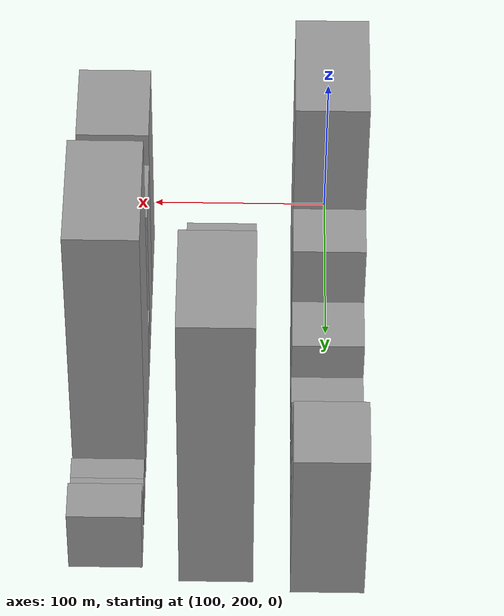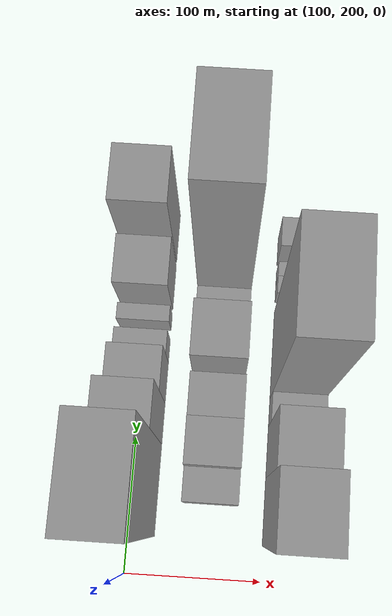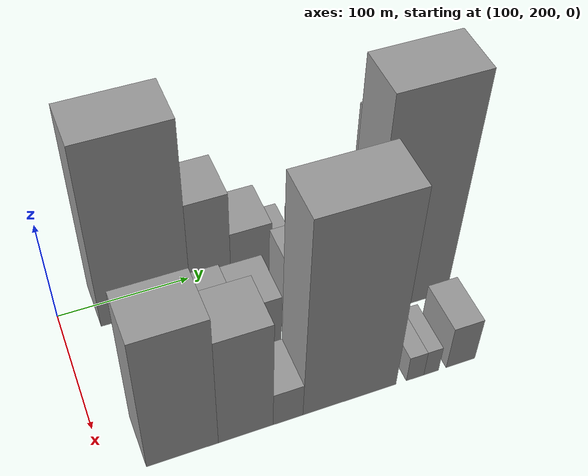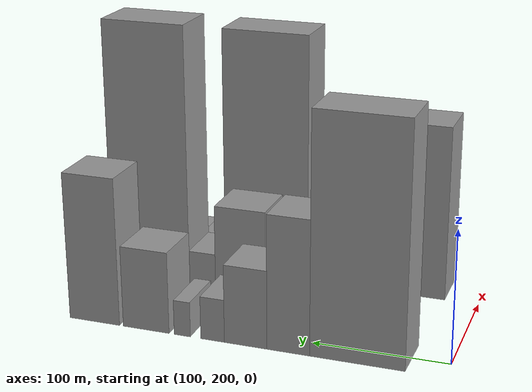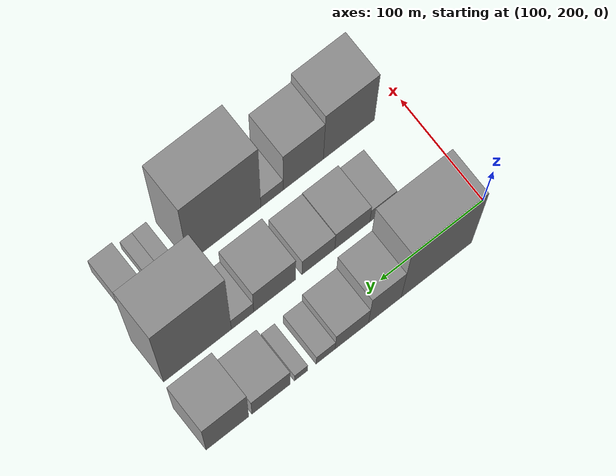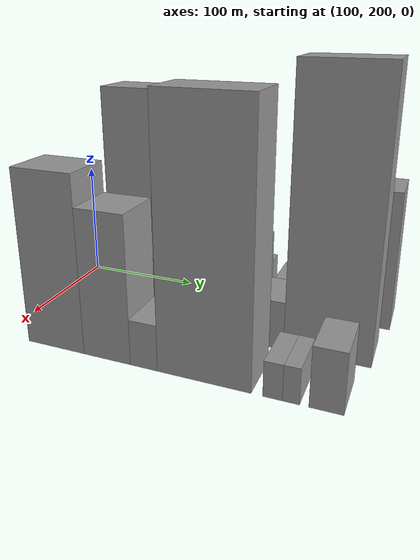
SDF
<sdf version="1.6">
 <world name="default">
  <model name="building_32">
   <static>1</static>
   <pose>100.0000 261.7838 0 0.000000 0.000000 0.000000</pose>
   <link name="link">
    <pose>0 0 90.00 0 0 0</pose>
    <collision name="collision"><geometry><box><size>40.0000 68.2540 180.0000</size></box></geometry></collision>
    <visual name="visual">
     <cast_shadows>0</cast_shadows>
     <geometry><box><size>40.0000 68.2540 180.0000</size></box></geometry>
     <material>
      <script>
       <uri>model://grey_wall/materials/scripts</uri>
       <uri>model://grey_wall/materials/textures</uri>
       <name>vrc/grey_wall</name>
      </script>
     </material>
    </visual>
   </link>
  </model>
  <model name="building_33">
   <static>1</static>
   <pose>100.0000 311.6807 0 0.000000 0.000000 0.000000</pose>
   <link name="link">
    <pose>0 0 51.00 0 0 0</pose>
    <collision name="collision"><geometry><box><size>40.0000 31.5397 102.0000</size></box></geometry></collision>
    <visual name="visual">
     <cast_shadows>0</cast_shadows>
     <geometry><box><size>40.0000 31.5397 102.0000</size></box></geometry>
     <material>
      <script>
       <uri>model://grey_wall/materials/scripts</uri>
       <uri>model://grey_wall/materials/textures</uri>
       <name>vrc/grey_wall</name>
      </script>
     </material>
    </visual>
   </link>
  </model>
  <model name="building_34">
   <static>1</static>
   <pose>100.0000 343.4627 0 0.000000 0.000000 0.000000</pose>
   <link name="link">
    <pose>0 0 30.00 0 0 0</pose>
    <collision name="collision"><geometry><box><size>40.0000 32.0243 60.0000</size></box></geometry></collision>
    <visual name="visual">
     <cast_shadows>0</cast_shadows>
     <geometry><box><size>40.0000 32.0243 60.0000</size></box></geometry>
     <material>
      <script>
       <uri>model://grey_wall/materials/scripts</uri>
       <uri>model://grey_wall/materials/textures</uri>
       <name>vrc/grey_wall</name>
      </script>
     </material>
    </visual>
   </link>
  </model>
  <model name="building_35">
   <static>1</static>
   <pose>100.0000 368.5396 0 0.000000 0.000000 0.000000</pose>
   <link name="link">
    <pose>0 0 16.50 0 0 0</pose>
    <collision name="collision"><geometry><box><size>40.0000 18.1296 33.0000</size></box></geometry></collision>
    <visual name="visual">
     <cast_shadows>0</cast_shadows>
     <geometry><box><size>40.0000 18.1296 33.0000</size></box></geometry>
     <material>
      <script>
       <uri>model://grey_wall/materials/scripts</uri>
       <uri>model://grey_wall/materials/textures</uri>
       <name>vrc/grey_wall</name>
      </script>
     </material>
    </visual>
   </link>
  </model>
  <model name="building_36">
   <static>1</static>
   <pose>100.0000 391.9266 0 0.000000 0.000000 0.000000</pose>
   <link name="link">
    <pose>0 0 13.50 0 0 0</pose>
    <collision name="collision"><geometry><box><size>40.0000 12.6444 27.0000</size></box></geometry></collision>
    <visual name="visual">
     <cast_shadows>0</cast_shadows>
     <geometry><box><size>40.0000 12.6444 27.0000</size></box></geometry>
     <material>
      <script>
       <uri>model://grey_wall/materials/scripts</uri>
       <uri>model://grey_wall/materials/textures</uri>
       <name>vrc/grey_wall</name>
      </script>
     </material>
    </visual>
   </link>
  </model>
  <model name="building_37">
   <static>1</static>
   <pose>100.0000 420.4541 0 0.000000 0.000000 0.000000</pose>
   <link name="link">
    <pose>0 0 31.50 0 0 0</pose>
    <collision name="collision"><geometry><box><size>40.0000 36.4104 63.0000</size></box></geometry></collision>
    <visual name="visual">
     <cast_shadows>0</cast_shadows>
     <geometry><box><size>40.0000 36.4104 63.0000</size></box></geometry>
     <material>
      <script>
       <uri>model://grey_wall/materials/scripts</uri>
       <uri>model://grey_wall/materials/textures</uri>
       <name>vrc/grey_wall</name>
      </script>
     </material>
    </visual>
   </link>
  </model>
  <model name="building_38">
   <static>1</static>
   <pose>100.0000 461.8608 0 0.000000 0.000000 0.000000</pose>
   <link name="link">
    <pose>0 0 57.00 0 0 0</pose>
    <collision name="collision"><geometry><box><size>40.0000 40.4030 114.0000</size></box></geometry></collision>
    <visual name="visual">
     <cast_shadows>0</cast_shadows>
     <geometry><box><size>40.0000 40.4030 114.0000</size></box></geometry>
     <material>
      <script>
       <uri>model://grey_wall/materials/scripts</uri>
       <uri>model://grey_wall/materials/textures</uri>
       <name>vrc/grey_wall</name>
      </script>
     </material>
    </visual>
   </link>
  </model>
  <model name="building_79">
   <static>1</static>
   <pose>160.0000 265.9566 0 0.000000 0.000000 0.000000</pose>
   <link name="link">
    <pose>0 0 21.00 0 0 0</pose>
    <collision name="collision"><geometry><box><size>40.0000 24.7344 42.0000</size></box></geometry></collision>
    <visual name="visual">
     <cast_shadows>0</cast_shadows>
     <geometry><box><size>40.0000 24.7344 42.0000</size></box></geometry>
     <material>
      <script>
       <uri>model://grey_wall/materials/scripts</uri>
       <uri>model://grey_wall/materials/textures</uri>
       <name>vrc/grey_wall</name>
      </script>
     </material>
    </visual>
   </link>
  </model>
  <model name="building_80">
   <static>1</static>
   <pose>160.0000 295.2602 0 0.000000 0.000000 0.000000</pose>
   <link name="link">
    <pose>0 0 28.50 0 0 0</pose>
    <collision name="collision"><geometry><box><size>40.0000 33.8728 57.0000</size></box></geometry></collision>
    <visual name="visual">
     <cast_shadows>0</cast_shadows>
     <geometry><box><size>40.0000 33.8728 57.0000</size></box></geometry>
     <material>
      <script>
       <uri>model://grey_wall/materials/scripts</uri>
       <uri>model://grey_wall/materials/textures</uri>
       <name>vrc/grey_wall</name>
      </script>
     </material>
    </visual>
   </link>
  </model>
  <model name="building_81">
   <static>1</static>
   <pose>160.0000 327.9938 0 0.000000 0.000000 0.000000</pose>
   <link name="link">
    <pose>0 0 27.00 0 0 0</pose>
    <collision name="collision"><geometry><box><size>40.0000 31.5945 54.0000</size></box></geometry></collision>
    <visual name="visual">
     <cast_shadows>0</cast_shadows>
     <geometry><box><size>40.0000 31.5945 54.0000</size></box></geometry>
     <material>
      <script>
       <uri>model://grey_wall/materials/scripts</uri>
       <uri>model://grey_wall/materials/textures</uri>
       <name>vrc/grey_wall</name>
      </script>
     </material>
    </visual>
   </link>
  </model>
  <model name="building_82">
   <static>1</static>
   <pose>160.0000 369.8762 0 0.000000 0.000000 0.000000</pose>
   <link name="link">
    <pose>0 0 39.00 0 0 0</pose>
    <collision name="collision"><geometry><box><size>40.0000 40.1702 78.0000</size></box></geometry></collision>
    <visual name="visual">
     <cast_shadows>0</cast_shadows>
     <geometry><box><size>40.0000 40.1702 78.0000</size></box></geometry>
     <material>
      <script>
       <uri>model://grey_wall/materials/scripts</uri>
       <uri>model://grey_wall/materials/textures</uri>
       <name>vrc/grey_wall</name>
      </script>
     </material>
    </visual>
   </link>
  </model>
  <model name="building_83">
   <static>1</static>
   <pose>160.0000 400.6297 0 0.000000 0.000000 0.000000</pose>
   <link name="link">
    <pose>0 0 19.50 0 0 0</pose>
    <collision name="collision"><geometry><box><size>40.0000 21.3368 39.0000</size></box></geometry></collision>
    <visual name="visual">
     <cast_shadows>0</cast_shadows>
     <geometry><box><size>40.0000 21.3368 39.0000</size></box></geometry>
     <material>
      <script>
       <uri>model://grey_wall/materials/scripts</uri>
       <uri>model://grey_wall/materials/textures</uri>
       <name>vrc/grey_wall</name>
      </script>
     </material>
    </visual>
   </link>
  </model>
  <model name="building_84">
   <static>1</static>
   <pose>160.0000 443.4979 0 0.000000 0.000000 0.000000</pose>
   <link name="link">
    <pose>0 0 106.50 0 0 0</pose>
    <collision name="collision"><geometry><box><size>40.0000 64.3995 213.0000</size></box></geometry></collision>
    <visual name="visual">
     <cast_shadows>0</cast_shadows>
     <geometry><box><size>40.0000 64.3995 213.0000</size></box></geometry>
     <material>
      <script>
       <uri>model://grey_wall/materials/scripts</uri>
       <uri>model://grey_wall/materials/textures</uri>
       <name>vrc/grey_wall</name>
      </script>
     </material>
    </visual>
   </link>
  </model>
  <model name="building_132">
   <static>1</static>
   <pose>220.0000 250.7997 0 0.000000 0.000000 0.000000</pose>
   <link name="link">
    <pose>0 0 69.00 0 0 0</pose>
    <collision name="collision"><geometry><box><size>40.0000 49.6976 138.0000</size></box></geometry></collision>
    <visual name="visual">
     <cast_shadows>0</cast_shadows>
     <geometry><box><size>40.0000 49.6976 138.0000</size></box></geometry>
     <material>
      <script>
       <uri>model://grey_wall/materials/scripts</uri>
       <uri>model://grey_wall/materials/textures</uri>
       <name>vrc/grey_wall</name>
      </script>
     </material>
    </visual>
   </link>
  </model>
  <model name="building_133">
   <static>1</static>
   <pose>220.0000 295.0781 0 0.000000 0.000000 0.000000</pose>
   <link name="link">
    <pose>0 0 57.00 0 0 0</pose>
    <collision name="collision"><geometry><box><size>40.0000 38.8592 114.0000</size></box></geometry></collision>
    <visual name="visual">
     <cast_shadows>0</cast_shadows>
     <geometry><box><size>40.0000 38.8592 114.0000</size></box></geometry>
     <material>
      <script>
       <uri>model://grey_wall/materials/scripts</uri>
       <uri>model://grey_wall/materials/textures</uri>
       <name>vrc/grey_wall</name>
      </script>
     </material>
    </visual>
   </link>
  </model>
  <model name="building_134">
   <static>1</static>
   <pose>220.0000 325.2966 0 0.000000 0.000000 0.000000</pose>
   <link name="link">
    <pose>0 0 18.00 0 0 0</pose>
    <collision name="collision"><geometry><box><size>40.0000 21.5778 36.0000</size></box></geometry></collision>
    <visual name="visual">
     <cast_shadows>0</cast_shadows>
     <geometry><box><size>40.0000 21.5778 36.0000</size></box></geometry>
     <material>
      <script>
       <uri>model://grey_wall/materials/scripts</uri>
       <uri>model://grey_wall/materials/textures</uri>
       <name>vrc/grey_wall</name>
      </script>
     </material>
    </visual>
   </link>
  </model>
  <model name="building_135">
   <static>1</static>
   <pose>220.0000 370.8183 0 0.000000 0.000000 0.000000</pose>
   <link name="link">
    <pose>0 0 99.00 0 0 0</pose>
    <collision name="collision"><geometry><box><size>40.0000 69.4655 198.0000</size></box></geometry></collision>
    <visual name="visual">
     <cast_shadows>0</cast_shadows>
     <geometry><box><size>40.0000 69.4655 198.0000</size></box></geometry>
     <material>
      <script>
       <uri>model://grey_wall/materials/scripts</uri>
       <uri>model://grey_wall/materials/textures</uri>
       <name>vrc/grey_wall</name>
      </script>
     </material>
    </visual>
   </link>
  </model>
  <model name="building_136">
   <static>1</static>
   <pose>220.0000 420.2482 0 0.000000 0.000000 0.000000</pose>
   <link name="link">
    <pose>0 0 13.50 0 0 0</pose>
    <collision name="collision"><geometry><box><size>40.0000 13.3944 27.0000</size></box></geometry></collision>
    <visual name="visual">
     <cast_shadows>0</cast_shadows>
     <geometry><box><size>40.0000 13.3944 27.0000</size></box></geometry>
     <material>
      <script>
       <uri>model://grey_wall/materials/scripts</uri>
       <uri>model://grey_wall/materials/textures</uri>
       <name>vrc/grey_wall</name>
      </script>
     </material>
    </visual>
   </link>
  </model>
  <model name="building_137">
   <static>1</static>
   <pose>220.0000 432.6685 0 0.000000 0.000000 0.000000</pose>
   <link name="link">
    <pose>0 0 13.50 0 0 0</pose>
    <collision name="collision"><geometry><box><size>40.0000 11.4462 27.0000</size></box></geometry></collision>
    <visual name="visual">
     <cast_shadows>0</cast_shadows>
     <geometry><box><size>40.0000 11.4462 27.0000</size></box></geometry>
     <material>
      <script>
       <uri>model://grey_wall/materials/scripts</uri>
       <uri>model://grey_wall/materials/textures</uri>
       <name>vrc/grey_wall</name>
      </script>
     </material>
    </visual>
   </link>
  </model>
  <model name="building_138">
   <static>1</static>
   <pose>220.0000 455.6580 0 0.000000 0.000000 0.000000</pose>
   <link name="link">
    <pose>0 0 22.50 0 0 0</pose>
    <collision name="collision"><geometry><box><size>40.0000 22.5326 45.0000</size></box></geometry></collision>
    <visual name="visual">
     <cast_shadows>0</cast_shadows>
     <geometry><box><size>40.0000 22.5326 45.0000</size></box></geometry>
     <material>
      <script>
       <uri>model://grey_wall/materials/scripts</uri>
       <uri>model://grey_wall/materials/textures</uri>
       <name>vrc/grey_wall</name>
      </script>
     </material>
    </visual>
   </link>
  </model>
 </world>
</sdf>
